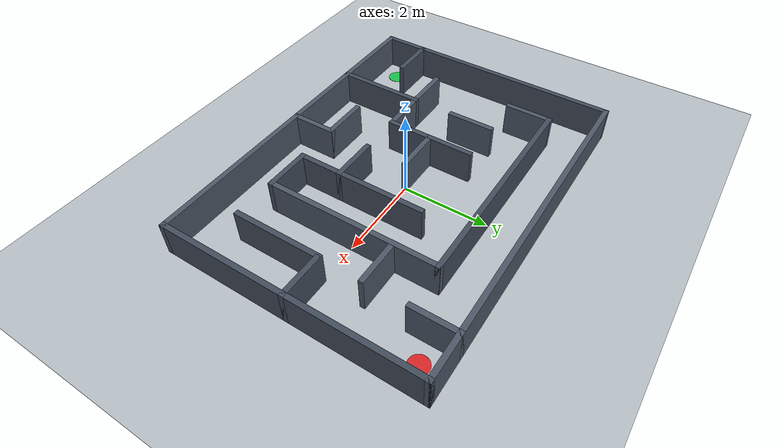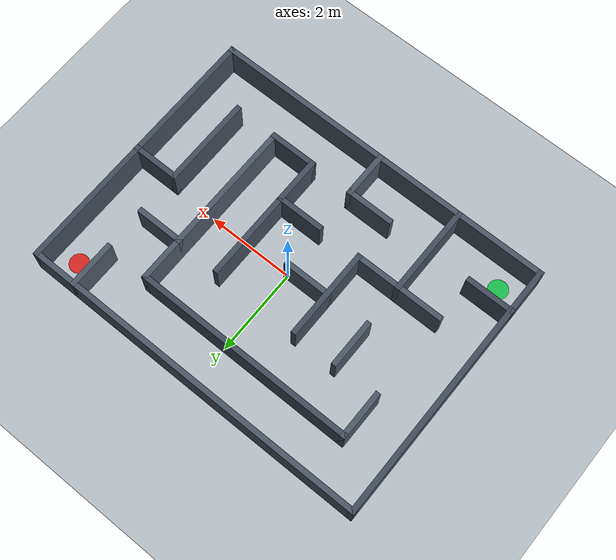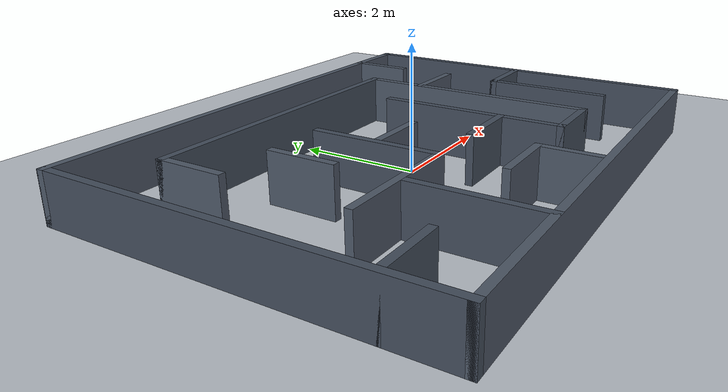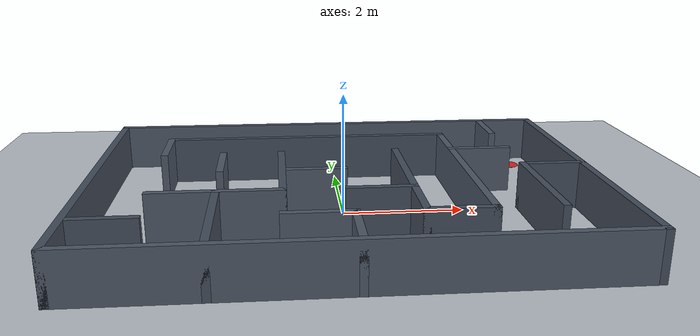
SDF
<?xml version="1.0" ?>
<sdf version="1.6">
  <world name="maze_world">

    <!-- ===== GUI: 默认相机 =====
         2026-09-18 调整：原配置 z=8.10 + pitch=-1.5708（正上方垂直俯视），
         迷宫墙仅 0.8m 高、迷宫 9x7m，垂直俯视时墙被投影成极细的线，几乎看不见，
         看起来像"空场景"。改为倾斜 50 度俯视 + 高度 6m，能同时看清墙侧面与地面通道。
    -->
    <gui fullscreen="0">
      <camera name="user_camera">
        <pose>0 -7.0 8.0 0 0.8520 1.5708</pose>
      </camera>
    </gui>

    <physics name="default_physics" type="ode">
      <max_step_size>0.005</max_step_size>
      <real_time_factor>0</real_time_factor>
      <real_time_update_rate>250</real_time_update_rate>
      <ode>
        <solver>
          <type>quick</type>
          <iters>30</iters>
          <sor>1.3</sor>
        </solver>
        <constraints>
          <cfm>0.0</cfm>
          <erp>0.2</erp>
          <contact_max_correcting_vel>100.0</contact_max_correcting_vel>
          <contact_surface_layer>0.001</contact_surface_layer>
        </constraints>
      </ode>
    </physics>

    <!-- ===== 光照 ===== -->
    <light type="directional" name="sun">
      <cast_shadows>false</cast_shadows>
      <pose>0 0 10 0 0 0</pose>
      <diffuse>0.9 0.9 0.9 1</diffuse>
      <specular>0.1 0.1 0.1 1</specular>
      <attenuation>
        <range>1000</range>
        <constant>0.9</constant>
        <linear>0.01</linear>
        <quadratic>0.001</quadratic>
      </attenuation>
      <direction>-0.5 0.3 -0.8</direction>
    </light>

    <!-- ===== 地面 ===== -->
    <model name="ground_plane">
      <static>true</static>
      <link name="link">
        <collision name="collision">
          <geometry><plane><normal>0 0 1</normal><size>30 30</size></plane></geometry>
          <surface>
            <friction><ode><mu>1.0</mu><mu2>1.0</mu2></ode></friction>
          </surface>
        </collision>
        <visual name="visual">
          <cast_shadows>false</cast_shadows>
          <geometry><plane><normal>0 0 1</normal><size>30 30</size></plane></geometry>
          <material>
            <ambient>0.72 0.75 0.78 1</ambient>
            <diffuse>0.72 0.75 0.78 1</diffuse>
          </material>
        </visual>
      </link>
    </model>

    <!-- ===== 迷宫墙体（共线已合并）===== -->

    <model name="wall_000">
      <static>true</static>
      <pose>-4.0000 0.0000 0.4000 0 0 0</pose>
      <link name="link">
        <collision name="collision">
          <geometry><box><size>0.1200 6.1200 0.8000</size></box></geometry>
          <surface>
            <friction><ode><mu>1.0</mu><mu2>1.0</mu2></ode></friction>
            <contact><ode><max_vel>0.1</max_vel><min_depth>0.001</min_depth></ode></contact>
          </surface>
        </collision>
        <visual name="visual">
          <geometry><box><size>0.1200 6.1200 0.8000</size></box></geometry>
          <material>
            <ambient>0.26 0.3 0.36 1</ambient>
            <diffuse>0.26 0.3 0.36 1</diffuse>
            <specular>0.05 0.05 0.05 1</specular>
          </material>
        </visual>
      </link>
    </model>

    <model name="wall_001">
      <static>true</static>
      <pose>-3.0000 1.5000 0.4000 0 0 0</pose>
      <link name="link">
        <collision name="collision">
          <geometry><box><size>0.1200 1.1200 0.8000</size></box></geometry>
          <surface>
            <friction><ode><mu>1.0</mu><mu2>1.0</mu2></ode></friction>
            <contact><ode><max_vel>0.1</max_vel><min_depth>0.001</min_depth></ode></contact>
          </surface>
        </collision>
        <visual name="visual">
          <geometry><box><size>0.1200 1.1200 0.8000</size></box></geometry>
          <material>
            <ambient>0.3 0.34 0.4 1</ambient>
            <diffuse>0.3 0.34 0.4 1</diffuse>
            <specular>0.05 0.05 0.05 1</specular>
          </material>
        </visual>
      </link>
    </model>

    <model name="wall_002">
      <static>true</static>
      <pose>-2.0000 -2.0000 0.4000 0 0 0</pose>
      <link name="link">
        <collision name="collision">
          <geometry><box><size>0.1200 2.1200 0.8000</size></box></geometry>
          <surface>
            <friction><ode><mu>1.0</mu><mu2>1.0</mu2></ode></friction>
            <contact><ode><max_vel>0.1</max_vel><min_depth>0.001</min_depth></ode></contact>
          </surface>
        </collision>
        <visual name="visual">
          <geometry><box><size>0.1200 2.1200 0.8000</size></box></geometry>
          <material>
            <ambient>0.26 0.3 0.36 1</ambient>
            <diffuse>0.26 0.3 0.36 1</diffuse>
            <specular>0.05 0.05 0.05 1</specular>
          </material>
        </visual>
      </link>
    </model>

    <model name="wall_003">
      <static>true</static>
      <pose>-2.0000 0.5000 0.4000 0 0 0</pose>
      <link name="link">
        <collision name="collision">
          <geometry><box><size>0.1200 1.1200 0.8000</size></box></geometry>
          <surface>
            <friction><ode><mu>1.0</mu><mu2>1.0</mu2></ode></friction>
            <contact><ode><max_vel>0.1</max_vel><min_depth>0.001</min_depth></ode></contact>
          </surface>
        </collision>
        <visual name="visual">
          <geometry><box><size>0.1200 1.1200 0.8000</size></box></geometry>
          <material>
            <ambient>0.3 0.34 0.4 1</ambient>
            <diffuse>0.3 0.34 0.4 1</diffuse>
            <specular>0.05 0.05 0.05 1</specular>
          </material>
        </visual>
      </link>
    </model>

    <model name="wall_004">
      <static>true</static>
      <pose>-1.0000 0.0000 0.4000 0 0 0</pose>
      <link name="link">
        <collision name="collision">
          <geometry><box><size>0.1200 2.1200 0.8000</size></box></geometry>
          <surface>
            <friction><ode><mu>1.0</mu><mu2>1.0</mu2></ode></friction>
            <contact><ode><max_vel>0.1</max_vel><min_depth>0.001</min_depth></ode></contact>
          </surface>
        </collision>
        <visual name="visual">
          <geometry><box><size>0.1200 2.1200 0.8000</size></box></geometry>
          <material>
            <ambient>0.26 0.3 0.36 1</ambient>
            <diffuse>0.26 0.3 0.36 1</diffuse>
            <specular>0.05 0.05 0.05 1</specular>
          </material>
        </visual>
      </link>
    </model>

    <model name="wall_005">
      <static>true</static>
      <pose>0.0000 -2.5000 0.4000 0 0 0</pose>
      <link name="link">
        <collision name="collision">
          <geometry><box><size>0.1200 1.1200 0.8000</size></box></geometry>
          <surface>
            <friction><ode><mu>1.0</mu><mu2>1.0</mu2></ode></friction>
            <contact><ode><max_vel>0.1</max_vel><min_depth>0.001</min_depth></ode></contact>
          </surface>
        </collision>
        <visual name="visual">
          <geometry><box><size>0.1200 1.1200 0.8000</size></box></geometry>
          <material>
            <ambient>0.3 0.34 0.4 1</ambient>
            <diffuse>0.3 0.34 0.4 1</diffuse>
            <specular>0.05 0.05 0.05 1</specular>
          </material>
        </visual>
      </link>
    </model>

    <model name="wall_006">
      <static>true</static>
      <pose>1.0000 -0.5000 0.4000 0 0 0</pose>
      <link name="link">
        <collision name="collision">
          <geometry><box><size>0.1200 3.1200 0.8000</size></box></geometry>
          <surface>
            <friction><ode><mu>1.0</mu><mu2>1.0</mu2></ode></friction>
            <contact><ode><max_vel>0.1</max_vel><min_depth>0.001</min_depth></ode></contact>
          </surface>
        </collision>
        <visual name="visual">
          <geometry><box><size>0.1200 3.1200 0.8000</size></box></geometry>
          <material>
            <ambient>0.26 0.3 0.36 1</ambient>
            <diffuse>0.26 0.3 0.36 1</diffuse>
            <specular>0.05 0.05 0.05 1</specular>
          </material>
        </visual>
      </link>
    </model>

    <model name="wall_007">
      <static>true</static>
      <pose>2.0000 0.0000 0.4000 0 0 0</pose>
      <link name="link">
        <collision name="collision">
          <geometry><box><size>0.1200 4.1200 0.8000</size></box></geometry>
          <surface>
            <friction><ode><mu>1.0</mu><mu2>1.0</mu2></ode></friction>
            <contact><ode><max_vel>0.1</max_vel><min_depth>0.001</min_depth></ode></contact>
          </surface>
        </collision>
        <visual name="visual">
          <geometry><box><size>0.1200 4.1200 0.8000</size></box></geometry>
          <material>
            <ambient>0.3 0.34 0.4 1</ambient>
            <diffuse>0.3 0.34 0.4 1</diffuse>
            <specular>0.05 0.05 0.05 1</specular>
          </material>
        </visual>
      </link>
    </model>

    <model name="wall_008">
      <static>true</static>
      <pose>3.0000 -1.0000 0.4000 0 0 0</pose>
      <link name="link">
        <collision name="collision">
          <geometry><box><size>0.1200 2.1200 0.8000</size></box></geometry>
          <surface>
            <friction><ode><mu>1.0</mu><mu2>1.0</mu2></ode></friction>
            <contact><ode><max_vel>0.1</max_vel><min_depth>0.001</min_depth></ode></contact>
          </surface>
        </collision>
        <visual name="visual">
          <geometry><box><size>0.1200 2.1200 0.8000</size></box></geometry>
          <material>
            <ambient>0.26 0.3 0.36 1</ambient>
            <diffuse>0.26 0.3 0.36 1</diffuse>
            <specular>0.05 0.05 0.05 1</specular>
          </material>
        </visual>
      </link>
    </model>

    <model name="wall_009">
      <static>true</static>
      <pose>3.0000 2.5000 0.4000 0 0 0</pose>
      <link name="link">
        <collision name="collision">
          <geometry><box><size>0.1200 1.1200 0.8000</size></box></geometry>
          <surface>
            <friction><ode><mu>1.0</mu><mu2>1.0</mu2></ode></friction>
            <contact><ode><max_vel>0.1</max_vel><min_depth>0.001</min_depth></ode></contact>
          </surface>
        </collision>
        <visual name="visual">
          <geometry><box><size>0.1200 1.1200 0.8000</size></box></geometry>
          <material>
            <ambient>0.3 0.34 0.4 1</ambient>
            <diffuse>0.3 0.34 0.4 1</diffuse>
            <specular>0.05 0.05 0.05 1</specular>
          </material>
        </visual>
      </link>
    </model>

    <model name="wall_010">
      <static>true</static>
      <pose>4.0000 0.0000 0.4000 0 0 0</pose>
      <link name="link">
        <collision name="collision">
          <geometry><box><size>0.1200 6.1200 0.8000</size></box></geometry>
          <surface>
            <friction><ode><mu>1.0</mu><mu2>1.0</mu2></ode></friction>
            <contact><ode><max_vel>0.1</max_vel><min_depth>0.001</min_depth></ode></contact>
          </surface>
        </collision>
        <visual name="visual">
          <geometry><box><size>0.1200 6.1200 0.8000</size></box></geometry>
          <material>
            <ambient>0.26 0.3 0.36 1</ambient>
            <diffuse>0.26 0.3 0.36 1</diffuse>
            <specular>0.05 0.05 0.05 1</specular>
          </material>
        </visual>
      </link>
    </model>

    <model name="wall_011">
      <static>true</static>
      <pose>0.0000 -3.0000 0.4000 0 0 0</pose>
      <link name="link">
        <collision name="collision">
          <geometry><box><size>8.1200 0.1200 0.8000</size></box></geometry>
          <surface>
            <friction><ode><mu>1.0</mu><mu2>1.0</mu2></ode></friction>
            <contact><ode><max_vel>0.1</max_vel><min_depth>0.001</min_depth></ode></contact>
          </surface>
        </collision>
        <visual name="visual">
          <geometry><box><size>8.1200 0.1200 0.8000</size></box></geometry>
          <material>
            <ambient>0.3 0.34 0.4 1</ambient>
            <diffuse>0.3 0.34 0.4 1</diffuse>
            <specular>0.05 0.05 0.05 1</specular>
          </material>
        </visual>
      </link>
    </model>

    <model name="wall_012">
      <static>true</static>
      <pose>-3.5000 -2.0000 0.4000 0 0 0</pose>
      <link name="link">
        <collision name="collision">
          <geometry><box><size>1.1200 0.1200 0.8000</size></box></geometry>
          <surface>
            <friction><ode><mu>1.0</mu><mu2>1.0</mu2></ode></friction>
            <contact><ode><max_vel>0.1</max_vel><min_depth>0.001</min_depth></ode></contact>
          </surface>
        </collision>
        <visual name="visual">
          <geometry><box><size>1.1200 0.1200 0.8000</size></box></geometry>
          <material>
            <ambient>0.26 0.3 0.36 1</ambient>
            <diffuse>0.26 0.3 0.36 1</diffuse>
            <specular>0.05 0.05 0.05 1</specular>
          </material>
        </visual>
      </link>
    </model>

    <model name="wall_013">
      <static>true</static>
      <pose>-0.5000 -2.0000 0.4000 0 0 0</pose>
      <link name="link">
        <collision name="collision">
          <geometry><box><size>1.1200 0.1200 0.8000</size></box></geometry>
          <surface>
            <friction><ode><mu>1.0</mu><mu2>1.0</mu2></ode></friction>
            <contact><ode><max_vel>0.1</max_vel><min_depth>0.001</min_depth></ode></contact>
          </surface>
        </collision>
        <visual name="visual">
          <geometry><box><size>1.1200 0.1200 0.8000</size></box></geometry>
          <material>
            <ambient>0.3 0.34 0.4 1</ambient>
            <diffuse>0.3 0.34 0.4 1</diffuse>
            <specular>0.05 0.05 0.05 1</specular>
          </material>
        </visual>
      </link>
    </model>

    <model name="wall_014">
      <static>true</static>
      <pose>1.5000 -2.0000 0.4000 0 0 0</pose>
      <link name="link">
        <collision name="collision">
          <geometry><box><size>1.1200 0.1200 0.8000</size></box></geometry>
          <surface>
            <friction><ode><mu>1.0</mu><mu2>1.0</mu2></ode></friction>
            <contact><ode><max_vel>0.1</max_vel><min_depth>0.001</min_depth></ode></contact>
          </surface>
        </collision>
        <visual name="visual">
          <geometry><box><size>1.1200 0.1200 0.8000</size></box></geometry>
          <material>
            <ambient>0.26 0.3 0.36 1</ambient>
            <diffuse>0.26 0.3 0.36 1</diffuse>
            <specular>0.05 0.05 0.05 1</specular>
          </material>
        </visual>
      </link>
    </model>

    <model name="wall_015">
      <static>true</static>
      <pose>-2.0000 -1.0000 0.4000 0 0 0</pose>
      <link name="link">
        <collision name="collision">
          <geometry><box><size>2.1200 0.1200 0.8000</size></box></geometry>
          <surface>
            <friction><ode><mu>1.0</mu><mu2>1.0</mu2></ode></friction>
            <contact><ode><max_vel>0.1</max_vel><min_depth>0.001</min_depth></ode></contact>
          </surface>
        </collision>
        <visual name="visual">
          <geometry><box><size>2.1200 0.1200 0.8000</size></box></geometry>
          <material>
            <ambient>0.3 0.34 0.4 1</ambient>
            <diffuse>0.3 0.34 0.4 1</diffuse>
            <specular>0.05 0.05 0.05 1</specular>
          </material>
        </visual>
      </link>
    </model>

    <model name="wall_016">
      <static>true</static>
      <pose>0.5000 -1.0000 0.4000 0 0 0</pose>
      <link name="link">
        <collision name="collision">
          <geometry><box><size>1.1200 0.1200 0.8000</size></box></geometry>
          <surface>
            <friction><ode><mu>1.0</mu><mu2>1.0</mu2></ode></friction>
            <contact><ode><max_vel>0.1</max_vel><min_depth>0.001</min_depth></ode></contact>
          </surface>
        </collision>
        <visual name="visual">
          <geometry><box><size>1.1200 0.1200 0.8000</size></box></geometry>
          <material>
            <ambient>0.26 0.3 0.36 1</ambient>
            <diffuse>0.26 0.3 0.36 1</diffuse>
            <specular>0.05 0.05 0.05 1</specular>
          </material>
        </visual>
      </link>
    </model>

    <model name="wall_017">
      <static>true</static>
      <pose>-0.5000 0.0000 0.4000 0 0 0</pose>
      <link name="link">
        <collision name="collision">
          <geometry><box><size>1.1200 0.1200 0.8000</size></box></geometry>
          <surface>
            <friction><ode><mu>1.0</mu><mu2>1.0</mu2></ode></friction>
            <contact><ode><max_vel>0.1</max_vel><min_depth>0.001</min_depth></ode></contact>
          </surface>
        </collision>
        <visual name="visual">
          <geometry><box><size>1.1200 0.1200 0.8000</size></box></geometry>
          <material>
            <ambient>0.3 0.34 0.4 1</ambient>
            <diffuse>0.3 0.34 0.4 1</diffuse>
            <specular>0.05 0.05 0.05 1</specular>
          </material>
        </visual>
      </link>
    </model>

    <model name="wall_018">
      <static>true</static>
      <pose>3.5000 0.0000 0.4000 0 0 0</pose>
      <link name="link">
        <collision name="collision">
          <geometry><box><size>1.1200 0.1200 0.8000</size></box></geometry>
          <surface>
            <friction><ode><mu>1.0</mu><mu2>1.0</mu2></ode></friction>
            <contact><ode><max_vel>0.1</max_vel><min_depth>0.001</min_depth></ode></contact>
          </surface>
        </collision>
        <visual name="visual">
          <geometry><box><size>1.1200 0.1200 0.8000</size></box></geometry>
          <material>
            <ambient>0.26 0.3 0.36 1</ambient>
            <diffuse>0.26 0.3 0.36 1</diffuse>
            <specular>0.05 0.05 0.05 1</specular>
          </material>
        </visual>
      </link>
    </model>

    <model name="wall_019">
      <static>true</static>
      <pose>2.5000 1.0000 0.4000 0 0 0</pose>
      <link name="link">
        <collision name="collision">
          <geometry><box><size>1.1200 0.1200 0.8000</size></box></geometry>
          <surface>
            <friction><ode><mu>1.0</mu><mu2>1.0</mu2></ode></friction>
            <contact><ode><max_vel>0.1</max_vel><min_depth>0.001</min_depth></ode></contact>
          </surface>
        </collision>
        <visual name="visual">
          <geometry><box><size>1.1200 0.1200 0.8000</size></box></geometry>
          <material>
            <ambient>0.3 0.34 0.4 1</ambient>
            <diffuse>0.3 0.34 0.4 1</diffuse>
            <specular>0.05 0.05 0.05 1</specular>
          </material>
        </visual>
      </link>
    </model>

    <model name="wall_020">
      <static>true</static>
      <pose>-0.5000 2.0000 0.4000 0 0 0</pose>
      <link name="link">
        <collision name="collision">
          <geometry><box><size>5.1200 0.1200 0.8000</size></box></geometry>
          <surface>
            <friction><ode><mu>1.0</mu><mu2>1.0</mu2></ode></friction>
            <contact><ode><max_vel>0.1</max_vel><min_depth>0.001</min_depth></ode></contact>
          </surface>
        </collision>
        <visual name="visual">
          <geometry><box><size>5.1200 0.1200 0.8000</size></box></geometry>
          <material>
            <ambient>0.26 0.3 0.36 1</ambient>
            <diffuse>0.26 0.3 0.36 1</diffuse>
            <specular>0.05 0.05 0.05 1</specular>
          </material>
        </visual>
      </link>
    </model>

    <model name="wall_021">
      <static>true</static>
      <pose>0.0000 3.0000 0.4000 0 0 0</pose>
      <link name="link">
        <collision name="collision">
          <geometry><box><size>8.1200 0.1200 0.8000</size></box></geometry>
          <surface>
            <friction><ode><mu>1.0</mu><mu2>1.0</mu2></ode></friction>
            <contact><ode><max_vel>0.1</max_vel><min_depth>0.001</min_depth></ode></contact>
          </surface>
        </collision>
        <visual name="visual">
          <geometry><box><size>8.1200 0.1200 0.8000</size></box></geometry>
          <material>
            <ambient>0.3 0.34 0.4 1</ambient>
            <diffuse>0.3 0.34 0.4 1</diffuse>
            <specular>0.05 0.05 0.05 1</specular>
          </material>
        </visual>
      </link>
    </model>

    <!-- ===== 起点标记（绿）===== -->
    <model name="start_marker">
      <static>true</static>
      <pose>-3.5000 -2.5000 0.002 0 0 0</pose>
      <link name="link">
        <visual name="visual">
          <geometry><cylinder><radius>0.22</radius><length>0.004</length></cylinder></geometry>
          <material>
            <ambient>0.10 0.75 0.30 1</ambient>
            <diffuse>0.10 0.75 0.30 1</diffuse>
          </material>
        </visual>
      </link>
    </model>

    <!-- ===== 终点标记（红）===== -->
    <model name="goal_marker">
      <static>true</static>
      <pose>3.5000 2.5000 0.002 0 0 0</pose>
      <link name="link">
        <visual name="visual">
          <geometry><cylinder><radius>0.22</radius><length>0.004</length></cylinder></geometry>
          <material>
            <ambient>0.85 0.15 0.15 1</ambient>
            <diffuse>0.85 0.15 0.15 1</diffuse>
          </material>
        </visual>
      </link>
    </model>

  </world>
</sdf>
